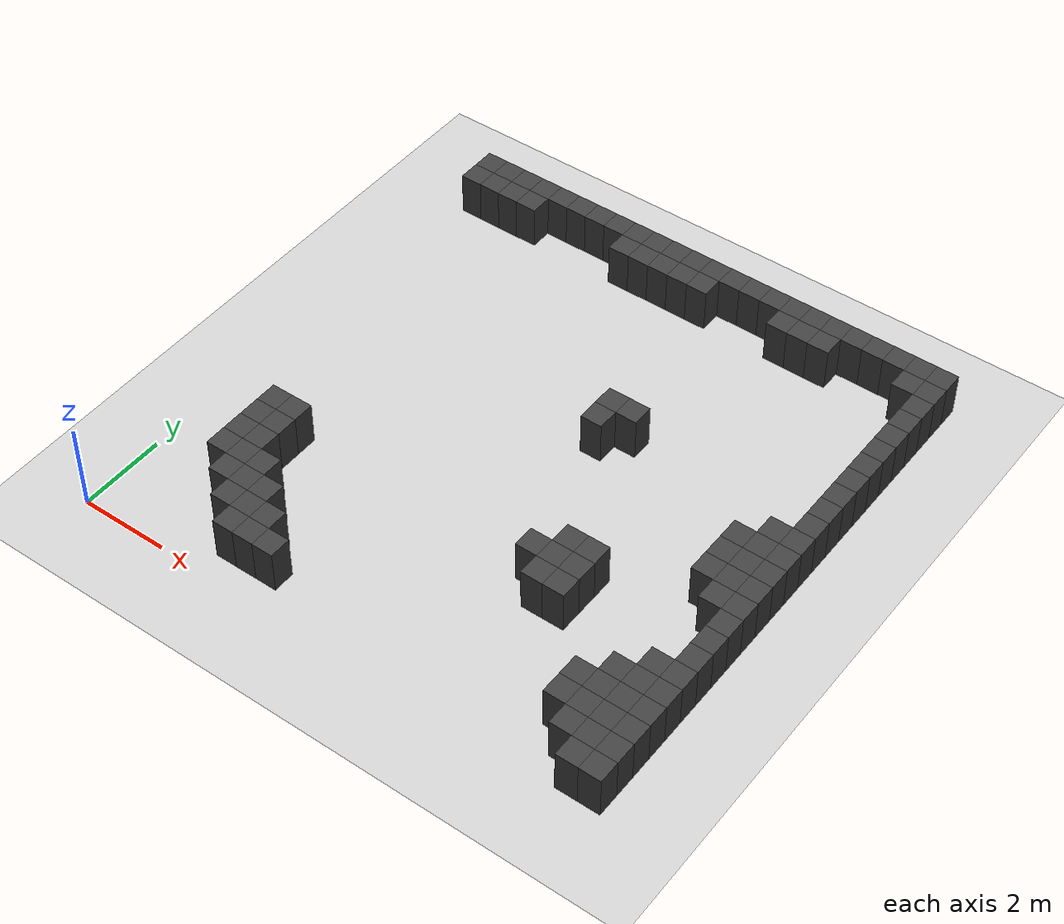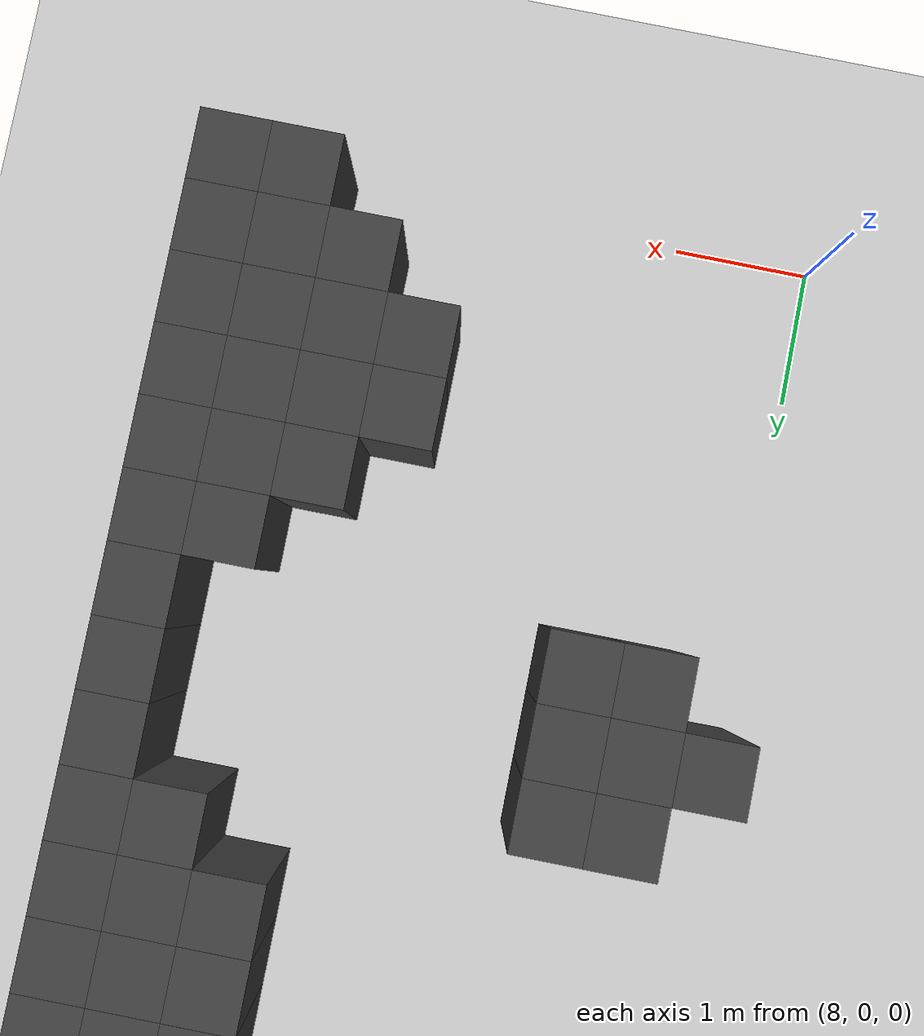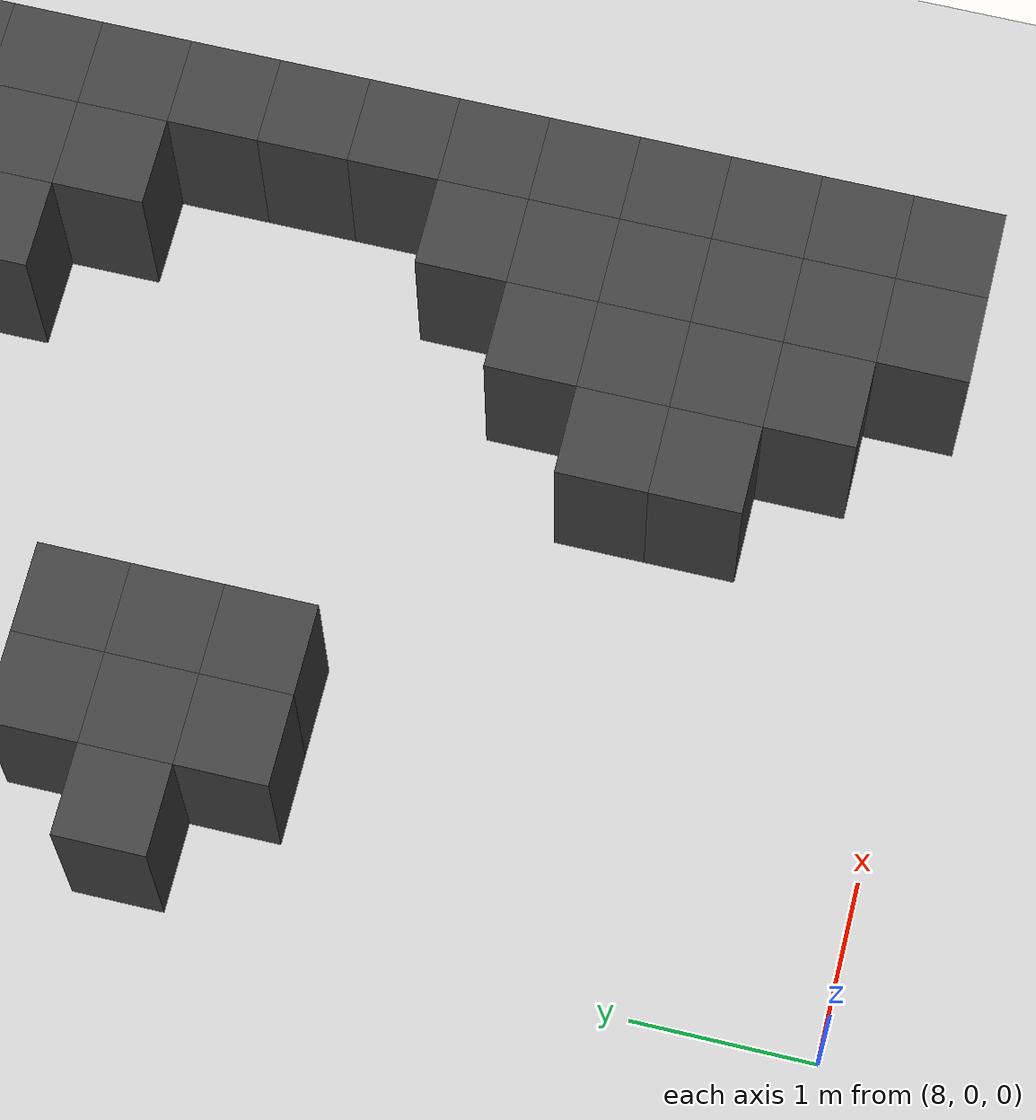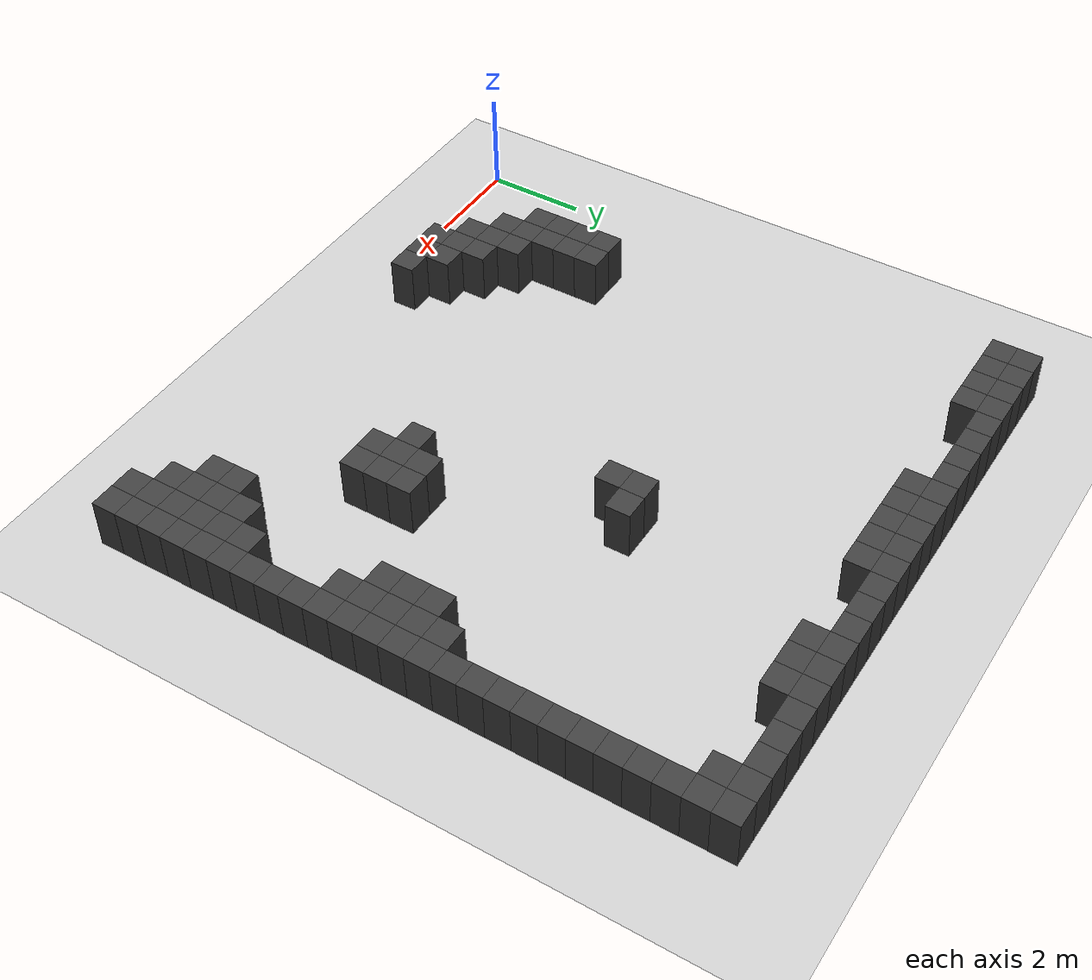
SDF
<sdf version="1.7">
 <world name="map_5937">
  <model name="ground_plane">
   <static>true</static>
   <link name="link">
    <collision name="collision">
     <geometry><plane><normal>0 0 1</normal><size>200 200</size></plane></geometry>
    </collision>
    <visual name="visual">
     <geometry><plane><normal>0 0 1</normal><size>200 200</size></plane></geometry>
     <material><ambient>0.8 0.8 0.8 1</ambient><diffuse>0.8 0.8 0.8 1</diffuse></material>
    </visual>
   </link>
  </model>
  <model name="maze_environment">
   <static>true</static>
   <link name="wall_26">
    <pose>0.750 12.250 0.500 0 0 0</pose>
    <collision name="col"><geometry><box><size>0.5 0.5 1.0</size></box></geometry></collision>
    <visual name="vis">
     <geometry><box><size>0.5 0.5 1.0</size></box></geometry>
     <material><ambient>0.15 0.15 0.15 1</ambient><diffuse>0.25 0.25 0.25 1</diffuse></material>
    </visual>
   </link>
   <link name="wall_27">
    <pose>1.250 12.250 0.500 0 0 0</pose>
    <collision name="col"><geometry><box><size>0.5 0.5 1.0</size></box></geometry></collision>
    <visual name="vis">
     <geometry><box><size>0.5 0.5 1.0</size></box></geometry>
     <material><ambient>0.15 0.15 0.15 1</ambient><diffuse>0.25 0.25 0.25 1</diffuse></material>
    </visual>
   </link>
   <link name="wall_28">
    <pose>1.750 12.250 0.500 0 0 0</pose>
    <collision name="col"><geometry><box><size>0.5 0.5 1.0</size></box></geometry></collision>
    <visual name="vis">
     <geometry><box><size>0.5 0.5 1.0</size></box></geometry>
     <material><ambient>0.15 0.15 0.15 1</ambient><diffuse>0.25 0.25 0.25 1</diffuse></material>
    </visual>
   </link>
   <link name="wall_29">
    <pose>2.250 12.250 0.500 0 0 0</pose>
    <collision name="col"><geometry><box><size>0.5 0.5 1.0</size></box></geometry></collision>
    <visual name="vis">
     <geometry><box><size>0.5 0.5 1.0</size></box></geometry>
     <material><ambient>0.15 0.15 0.15 1</ambient><diffuse>0.25 0.25 0.25 1</diffuse></material>
    </visual>
   </link>
   <link name="wall_30">
    <pose>2.750 12.250 0.500 0 0 0</pose>
    <collision name="col"><geometry><box><size>0.5 0.5 1.0</size></box></geometry></collision>
    <visual name="vis">
     <geometry><box><size>0.5 0.5 1.0</size></box></geometry>
     <material><ambient>0.15 0.15 0.15 1</ambient><diffuse>0.25 0.25 0.25 1</diffuse></material>
    </visual>
   </link>
   <link name="wall_31">
    <pose>3.250 12.250 0.500 0 0 0</pose>
    <collision name="col"><geometry><box><size>0.5 0.5 1.0</size></box></geometry></collision>
    <visual name="vis">
     <geometry><box><size>0.5 0.5 1.0</size></box></geometry>
     <material><ambient>0.15 0.15 0.15 1</ambient><diffuse>0.25 0.25 0.25 1</diffuse></material>
    </visual>
   </link>
   <link name="wall_32">
    <pose>3.750 12.250 0.500 0 0 0</pose>
    <collision name="col"><geometry><box><size>0.5 0.5 1.0</size></box></geometry></collision>
    <visual name="vis">
     <geometry><box><size>0.5 0.5 1.0</size></box></geometry>
     <material><ambient>0.15 0.15 0.15 1</ambient><diffuse>0.25 0.25 0.25 1</diffuse></material>
    </visual>
   </link>
   <link name="wall_33">
    <pose>4.250 12.250 0.500 0 0 0</pose>
    <collision name="col"><geometry><box><size>0.5 0.5 1.0</size></box></geometry></collision>
    <visual name="vis">
     <geometry><box><size>0.5 0.5 1.0</size></box></geometry>
     <material><ambient>0.15 0.15 0.15 1</ambient><diffuse>0.25 0.25 0.25 1</diffuse></material>
    </visual>
   </link>
   <link name="wall_34">
    <pose>4.750 12.250 0.500 0 0 0</pose>
    <collision name="col"><geometry><box><size>0.5 0.5 1.0</size></box></geometry></collision>
    <visual name="vis">
     <geometry><box><size>0.5 0.5 1.0</size></box></geometry>
     <material><ambient>0.15 0.15 0.15 1</ambient><diffuse>0.25 0.25 0.25 1</diffuse></material>
    </visual>
   </link>
   <link name="wall_35">
    <pose>5.250 12.250 0.500 0 0 0</pose>
    <collision name="col"><geometry><box><size>0.5 0.5 1.0</size></box></geometry></collision>
    <visual name="vis">
     <geometry><box><size>0.5 0.5 1.0</size></box></geometry>
     <material><ambient>0.15 0.15 0.15 1</ambient><diffuse>0.25 0.25 0.25 1</diffuse></material>
    </visual>
   </link>
   <link name="wall_36">
    <pose>5.750 12.250 0.500 0 0 0</pose>
    <collision name="col"><geometry><box><size>0.5 0.5 1.0</size></box></geometry></collision>
    <visual name="vis">
     <geometry><box><size>0.5 0.5 1.0</size></box></geometry>
     <material><ambient>0.15 0.15 0.15 1</ambient><diffuse>0.25 0.25 0.25 1</diffuse></material>
    </visual>
   </link>
   <link name="wall_37">
    <pose>6.250 12.250 0.500 0 0 0</pose>
    <collision name="col"><geometry><box><size>0.5 0.5 1.0</size></box></geometry></collision>
    <visual name="vis">
     <geometry><box><size>0.5 0.5 1.0</size></box></geometry>
     <material><ambient>0.15 0.15 0.15 1</ambient><diffuse>0.25 0.25 0.25 1</diffuse></material>
    </visual>
   </link>
   <link name="wall_38">
    <pose>6.750 12.250 0.500 0 0 0</pose>
    <collision name="col"><geometry><box><size>0.5 0.5 1.0</size></box></geometry></collision>
    <visual name="vis">
     <geometry><box><size>0.5 0.5 1.0</size></box></geometry>
     <material><ambient>0.15 0.15 0.15 1</ambient><diffuse>0.25 0.25 0.25 1</diffuse></material>
    </visual>
   </link>
   <link name="wall_39">
    <pose>7.250 12.250 0.500 0 0 0</pose>
    <collision name="col"><geometry><box><size>0.5 0.5 1.0</size></box></geometry></collision>
    <visual name="vis">
     <geometry><box><size>0.5 0.5 1.0</size></box></geometry>
     <material><ambient>0.15 0.15 0.15 1</ambient><diffuse>0.25 0.25 0.25 1</diffuse></material>
    </visual>
   </link>
   <link name="wall_40">
    <pose>7.750 12.250 0.500 0 0 0</pose>
    <collision name="col"><geometry><box><size>0.5 0.5 1.0</size></box></geometry></collision>
    <visual name="vis">
     <geometry><box><size>0.5 0.5 1.0</size></box></geometry>
     <material><ambient>0.15 0.15 0.15 1</ambient><diffuse>0.25 0.25 0.25 1</diffuse></material>
    </visual>
   </link>
   <link name="wall_41">
    <pose>8.250 12.250 0.500 0 0 0</pose>
    <collision name="col"><geometry><box><size>0.5 0.5 1.0</size></box></geometry></collision>
    <visual name="vis">
     <geometry><box><size>0.5 0.5 1.0</size></box></geometry>
     <material><ambient>0.15 0.15 0.15 1</ambient><diffuse>0.25 0.25 0.25 1</diffuse></material>
    </visual>
   </link>
   <link name="wall_42">
    <pose>8.750 12.250 0.500 0 0 0</pose>
    <collision name="col"><geometry><box><size>0.5 0.5 1.0</size></box></geometry></collision>
    <visual name="vis">
     <geometry><box><size>0.5 0.5 1.0</size></box></geometry>
     <material><ambient>0.15 0.15 0.15 1</ambient><diffuse>0.25 0.25 0.25 1</diffuse></material>
    </visual>
   </link>
   <link name="wall_43">
    <pose>9.250 12.250 0.500 0 0 0</pose>
    <collision name="col"><geometry><box><size>0.5 0.5 1.0</size></box></geometry></collision>
    <visual name="vis">
     <geometry><box><size>0.5 0.5 1.0</size></box></geometry>
     <material><ambient>0.15 0.15 0.15 1</ambient><diffuse>0.25 0.25 0.25 1</diffuse></material>
    </visual>
   </link>
   <link name="wall_44">
    <pose>9.750 12.250 0.500 0 0 0</pose>
    <collision name="col"><geometry><box><size>0.5 0.5 1.0</size></box></geometry></collision>
    <visual name="vis">
     <geometry><box><size>0.5 0.5 1.0</size></box></geometry>
     <material><ambient>0.15 0.15 0.15 1</ambient><diffuse>0.25 0.25 0.25 1</diffuse></material>
    </visual>
   </link>
   <link name="wall_45">
    <pose>10.250 12.250 0.500 0 0 0</pose>
    <collision name="col"><geometry><box><size>0.5 0.5 1.0</size></box></geometry></collision>
    <visual name="vis">
     <geometry><box><size>0.5 0.5 1.0</size></box></geometry>
     <material><ambient>0.15 0.15 0.15 1</ambient><diffuse>0.25 0.25 0.25 1</diffuse></material>
    </visual>
   </link>
   <link name="wall_46">
    <pose>10.750 12.250 0.500 0 0 0</pose>
    <collision name="col"><geometry><box><size>0.5 0.5 1.0</size></box></geometry></collision>
    <visual name="vis">
     <geometry><box><size>0.5 0.5 1.0</size></box></geometry>
     <material><ambient>0.15 0.15 0.15 1</ambient><diffuse>0.25 0.25 0.25 1</diffuse></material>
    </visual>
   </link>
   <link name="wall_47">
    <pose>11.250 12.250 0.500 0 0 0</pose>
    <collision name="col"><geometry><box><size>0.5 0.5 1.0</size></box></geometry></collision>
    <visual name="vis">
     <geometry><box><size>0.5 0.5 1.0</size></box></geometry>
     <material><ambient>0.15 0.15 0.15 1</ambient><diffuse>0.25 0.25 0.25 1</diffuse></material>
    </visual>
   </link>
   <link name="wall_48">
    <pose>11.750 12.250 0.500 0 0 0</pose>
    <collision name="col"><geometry><box><size>0.5 0.5 1.0</size></box></geometry></collision>
    <visual name="vis">
     <geometry><box><size>0.5 0.5 1.0</size></box></geometry>
     <material><ambient>0.15 0.15 0.15 1</ambient><diffuse>0.25 0.25 0.25 1</diffuse></material>
    </visual>
   </link>
   <link name="wall_49">
    <pose>12.250 12.250 0.500 0 0 0</pose>
    <collision name="col"><geometry><box><size>0.5 0.5 1.0</size></box></geometry></collision>
    <visual name="vis">
     <geometry><box><size>0.5 0.5 1.0</size></box></geometry>
     <material><ambient>0.15 0.15 0.15 1</ambient><diffuse>0.25 0.25 0.25 1</diffuse></material>
    </visual>
   </link>
   <link name="wall_59">
    <pose>0.750 11.750 0.500 0 0 0</pose>
    <collision name="col"><geometry><box><size>0.5 0.5 1.0</size></box></geometry></collision>
    <visual name="vis">
     <geometry><box><size>0.5 0.5 1.0</size></box></geometry>
     <material><ambient>0.15 0.15 0.15 1</ambient><diffuse>0.25 0.25 0.25 1</diffuse></material>
    </visual>
   </link>
   <link name="wall_60">
    <pose>1.250 11.750 0.500 0 0 0</pose>
    <collision name="col"><geometry><box><size>0.5 0.5 1.0</size></box></geometry></collision>
    <visual name="vis">
     <geometry><box><size>0.5 0.5 1.0</size></box></geometry>
     <material><ambient>0.15 0.15 0.15 1</ambient><diffuse>0.25 0.25 0.25 1</diffuse></material>
    </visual>
   </link>
   <link name="wall_61">
    <pose>1.750 11.750 0.500 0 0 0</pose>
    <collision name="col"><geometry><box><size>0.5 0.5 1.0</size></box></geometry></collision>
    <visual name="vis">
     <geometry><box><size>0.5 0.5 1.0</size></box></geometry>
     <material><ambient>0.15 0.15 0.15 1</ambient><diffuse>0.25 0.25 0.25 1</diffuse></material>
    </visual>
   </link>
   <link name="wall_62">
    <pose>2.250 11.750 0.500 0 0 0</pose>
    <collision name="col"><geometry><box><size>0.5 0.5 1.0</size></box></geometry></collision>
    <visual name="vis">
     <geometry><box><size>0.5 0.5 1.0</size></box></geometry>
     <material><ambient>0.15 0.15 0.15 1</ambient><diffuse>0.25 0.25 0.25 1</diffuse></material>
    </visual>
   </link>
   <link name="wall_63">
    <pose>4.750 11.750 0.500 0 0 0</pose>
    <collision name="col"><geometry><box><size>0.5 0.5 1.0</size></box></geometry></collision>
    <visual name="vis">
     <geometry><box><size>0.5 0.5 1.0</size></box></geometry>
     <material><ambient>0.15 0.15 0.15 1</ambient><diffuse>0.25 0.25 0.25 1</diffuse></material>
    </visual>
   </link>
   <link name="wall_64">
    <pose>5.250 11.750 0.500 0 0 0</pose>
    <collision name="col"><geometry><box><size>0.5 0.5 1.0</size></box></geometry></collision>
    <visual name="vis">
     <geometry><box><size>0.5 0.5 1.0</size></box></geometry>
     <material><ambient>0.15 0.15 0.15 1</ambient><diffuse>0.25 0.25 0.25 1</diffuse></material>
    </visual>
   </link>
   <link name="wall_65">
    <pose>5.750 11.750 0.500 0 0 0</pose>
    <collision name="col"><geometry><box><size>0.5 0.5 1.0</size></box></geometry></collision>
    <visual name="vis">
     <geometry><box><size>0.5 0.5 1.0</size></box></geometry>
     <material><ambient>0.15 0.15 0.15 1</ambient><diffuse>0.25 0.25 0.25 1</diffuse></material>
    </visual>
   </link>
   <link name="wall_66">
    <pose>6.250 11.750 0.500 0 0 0</pose>
    <collision name="col"><geometry><box><size>0.5 0.5 1.0</size></box></geometry></collision>
    <visual name="vis">
     <geometry><box><size>0.5 0.5 1.0</size></box></geometry>
     <material><ambient>0.15 0.15 0.15 1</ambient><diffuse>0.25 0.25 0.25 1</diffuse></material>
    </visual>
   </link>
   <link name="wall_67">
    <pose>6.750 11.750 0.500 0 0 0</pose>
    <collision name="col"><geometry><box><size>0.5 0.5 1.0</size></box></geometry></collision>
    <visual name="vis">
     <geometry><box><size>0.5 0.5 1.0</size></box></geometry>
     <material><ambient>0.15 0.15 0.15 1</ambient><diffuse>0.25 0.25 0.25 1</diffuse></material>
    </visual>
   </link>
   <link name="wall_68">
    <pose>8.750 11.750 0.500 0 0 0</pose>
    <collision name="col"><geometry><box><size>0.5 0.5 1.0</size></box></geometry></collision>
    <visual name="vis">
     <geometry><box><size>0.5 0.5 1.0</size></box></geometry>
     <material><ambient>0.15 0.15 0.15 1</ambient><diffuse>0.25 0.25 0.25 1</diffuse></material>
    </visual>
   </link>
   <link name="wall_69">
    <pose>9.250 11.750 0.500 0 0 0</pose>
    <collision name="col"><geometry><box><size>0.5 0.5 1.0</size></box></geometry></collision>
    <visual name="vis">
     <geometry><box><size>0.5 0.5 1.0</size></box></geometry>
     <material><ambient>0.15 0.15 0.15 1</ambient><diffuse>0.25 0.25 0.25 1</diffuse></material>
    </visual>
   </link>
   <link name="wall_70">
    <pose>9.750 11.750 0.500 0 0 0</pose>
    <collision name="col"><geometry><box><size>0.5 0.5 1.0</size></box></geometry></collision>
    <visual name="vis">
     <geometry><box><size>0.5 0.5 1.0</size></box></geometry>
     <material><ambient>0.15 0.15 0.15 1</ambient><diffuse>0.25 0.25 0.25 1</diffuse></material>
    </visual>
   </link>
   <link name="wall_71">
    <pose>11.750 11.750 0.500 0 0 0</pose>
    <collision name="col"><geometry><box><size>0.5 0.5 1.0</size></box></geometry></collision>
    <visual name="vis">
     <geometry><box><size>0.5 0.5 1.0</size></box></geometry>
     <material><ambient>0.15 0.15 0.15 1</ambient><diffuse>0.25 0.25 0.25 1</diffuse></material>
    </visual>
   </link>
   <link name="wall_72">
    <pose>12.250 11.750 0.500 0 0 0</pose>
    <collision name="col"><geometry><box><size>0.5 0.5 1.0</size></box></geometry></collision>
    <visual name="vis">
     <geometry><box><size>0.5 0.5 1.0</size></box></geometry>
     <material><ambient>0.15 0.15 0.15 1</ambient><diffuse>0.25 0.25 0.25 1</diffuse></material>
    </visual>
   </link>
   <link name="wall_79">
    <pose>12.250 11.250 0.500 0 0 0</pose>
    <collision name="col"><geometry><box><size>0.5 0.5 1.0</size></box></geometry></collision>
    <visual name="vis">
     <geometry><box><size>0.5 0.5 1.0</size></box></geometry>
     <material><ambient>0.15 0.15 0.15 1</ambient><diffuse>0.25 0.25 0.25 1</diffuse></material>
    </visual>
   </link>
   <link name="wall_85">
    <pose>12.250 10.750 0.500 0 0 0</pose>
    <collision name="col"><geometry><box><size>0.5 0.5 1.0</size></box></geometry></collision>
    <visual name="vis">
     <geometry><box><size>0.5 0.5 1.0</size></box></geometry>
     <material><ambient>0.15 0.15 0.15 1</ambient><diffuse>0.25 0.25 0.25 1</diffuse></material>
    </visual>
   </link>
   <link name="wall_91">
    <pose>12.250 10.250 0.500 0 0 0</pose>
    <collision name="col"><geometry><box><size>0.5 0.5 1.0</size></box></geometry></collision>
    <visual name="vis">
     <geometry><box><size>0.5 0.5 1.0</size></box></geometry>
     <material><ambient>0.15 0.15 0.15 1</ambient><diffuse>0.25 0.25 0.25 1</diffuse></material>
    </visual>
   </link>
   <link name="wall_97">
    <pose>12.250 9.750 0.500 0 0 0</pose>
    <collision name="col"><geometry><box><size>0.5 0.5 1.0</size></box></geometry></collision>
    <visual name="vis">
     <geometry><box><size>0.5 0.5 1.0</size></box></geometry>
     <material><ambient>0.15 0.15 0.15 1</ambient><diffuse>0.25 0.25 0.25 1</diffuse></material>
    </visual>
   </link>
   <link name="wall_102">
    <pose>12.250 9.250 0.500 0 0 0</pose>
    <collision name="col"><geometry><box><size>0.5 0.5 1.0</size></box></geometry></collision>
    <visual name="vis">
     <geometry><box><size>0.5 0.5 1.0</size></box></geometry>
     <material><ambient>0.15 0.15 0.15 1</ambient><diffuse>0.25 0.25 0.25 1</diffuse></material>
    </visual>
   </link>
   <link name="wall_109">
    <pose>12.250 8.750 0.500 0 0 0</pose>
    <collision name="col"><geometry><box><size>0.5 0.5 1.0</size></box></geometry></collision>
    <visual name="vis">
     <geometry><box><size>0.5 0.5 1.0</size></box></geometry>
     <material><ambient>0.15 0.15 0.15 1</ambient><diffuse>0.25 0.25 0.25 1</diffuse></material>
    </visual>
   </link>
   <link name="wall_115">
    <pose>12.250 8.250 0.500 0 0 0</pose>
    <collision name="col"><geometry><box><size>0.5 0.5 1.0</size></box></geometry></collision>
    <visual name="vis">
     <geometry><box><size>0.5 0.5 1.0</size></box></geometry>
     <material><ambient>0.15 0.15 0.15 1</ambient><diffuse>0.25 0.25 0.25 1</diffuse></material>
    </visual>
   </link>
   <link name="wall_119">
    <pose>7.250 7.750 0.500 0 0 0</pose>
    <collision name="col"><geometry><box><size>0.5 0.5 1.0</size></box></geometry></collision>
    <visual name="vis">
     <geometry><box><size>0.5 0.5 1.0</size></box></geometry>
     <material><ambient>0.15 0.15 0.15 1</ambient><diffuse>0.25 0.25 0.25 1</diffuse></material>
    </visual>
   </link>
   <link name="wall_120">
    <pose>7.750 7.750 0.500 0 0 0</pose>
    <collision name="col"><geometry><box><size>0.5 0.5 1.0</size></box></geometry></collision>
    <visual name="vis">
     <geometry><box><size>0.5 0.5 1.0</size></box></geometry>
     <material><ambient>0.15 0.15 0.15 1</ambient><diffuse>0.25 0.25 0.25 1</diffuse></material>
    </visual>
   </link>
   <link name="wall_121">
    <pose>12.250 7.750 0.500 0 0 0</pose>
    <collision name="col"><geometry><box><size>0.5 0.5 1.0</size></box></geometry></collision>
    <visual name="vis">
     <geometry><box><size>0.5 0.5 1.0</size></box></geometry>
     <material><ambient>0.15 0.15 0.15 1</ambient><diffuse>0.25 0.25 0.25 1</diffuse></material>
    </visual>
   </link>
   <link name="wall_123">
    <pose>7.250 7.250 0.500 0 0 0</pose>
    <collision name="col"><geometry><box><size>0.5 0.5 1.0</size></box></geometry></collision>
    <visual name="vis">
     <geometry><box><size>0.5 0.5 1.0</size></box></geometry>
     <material><ambient>0.15 0.15 0.15 1</ambient><diffuse>0.25 0.25 0.25 1</diffuse></material>
    </visual>
   </link>
   <link name="wall_124">
    <pose>12.250 7.250 0.500 0 0 0</pose>
    <collision name="col"><geometry><box><size>0.5 0.5 1.0</size></box></geometry></collision>
    <visual name="vis">
     <geometry><box><size>0.5 0.5 1.0</size></box></geometry>
     <material><ambient>0.15 0.15 0.15 1</ambient><diffuse>0.25 0.25 0.25 1</diffuse></material>
    </visual>
   </link>
   <link name="wall_127">
    <pose>11.750 6.750 0.500 0 0 0</pose>
    <collision name="col"><geometry><box><size>0.5 0.5 1.0</size></box></geometry></collision>
    <visual name="vis">
     <geometry><box><size>0.5 0.5 1.0</size></box></geometry>
     <material><ambient>0.15 0.15 0.15 1</ambient><diffuse>0.25 0.25 0.25 1</diffuse></material>
    </visual>
   </link>
   <link name="wall_128">
    <pose>12.250 6.750 0.500 0 0 0</pose>
    <collision name="col"><geometry><box><size>0.5 0.5 1.0</size></box></geometry></collision>
    <visual name="vis">
     <geometry><box><size>0.5 0.5 1.0</size></box></geometry>
     <material><ambient>0.15 0.15 0.15 1</ambient><diffuse>0.25 0.25 0.25 1</diffuse></material>
    </visual>
   </link>
   <link name="wall_133">
    <pose>11.250 6.250 0.500 0 0 0</pose>
    <collision name="col"><geometry><box><size>0.5 0.5 1.0</size></box></geometry></collision>
    <visual name="vis">
     <geometry><box><size>0.5 0.5 1.0</size></box></geometry>
     <material><ambient>0.15 0.15 0.15 1</ambient><diffuse>0.25 0.25 0.25 1</diffuse></material>
    </visual>
   </link>
   <link name="wall_134">
    <pose>11.750 6.250 0.500 0 0 0</pose>
    <collision name="col"><geometry><box><size>0.5 0.5 1.0</size></box></geometry></collision>
    <visual name="vis">
     <geometry><box><size>0.5 0.5 1.0</size></box></geometry>
     <material><ambient>0.15 0.15 0.15 1</ambient><diffuse>0.25 0.25 0.25 1</diffuse></material>
    </visual>
   </link>
   <link name="wall_135">
    <pose>12.250 6.250 0.500 0 0 0</pose>
    <collision name="col"><geometry><box><size>0.5 0.5 1.0</size></box></geometry></collision>
    <visual name="vis">
     <geometry><box><size>0.5 0.5 1.0</size></box></geometry>
     <material><ambient>0.15 0.15 0.15 1</ambient><diffuse>0.25 0.25 0.25 1</diffuse></material>
    </visual>
   </link>
   <link name="wall_140">
    <pose>11.250 5.750 0.500 0 0 0</pose>
    <collision name="col"><geometry><box><size>0.5 0.5 1.0</size></box></geometry></collision>
    <visual name="vis">
     <geometry><box><size>0.5 0.5 1.0</size></box></geometry>
     <material><ambient>0.15 0.15 0.15 1</ambient><diffuse>0.25 0.25 0.25 1</diffuse></material>
    </visual>
   </link>
   <link name="wall_141">
    <pose>11.750 5.750 0.500 0 0 0</pose>
    <collision name="col"><geometry><box><size>0.5 0.5 1.0</size></box></geometry></collision>
    <visual name="vis">
     <geometry><box><size>0.5 0.5 1.0</size></box></geometry>
     <material><ambient>0.15 0.15 0.15 1</ambient><diffuse>0.25 0.25 0.25 1</diffuse></material>
    </visual>
   </link>
   <link name="wall_142">
    <pose>12.250 5.750 0.500 0 0 0</pose>
    <collision name="col"><geometry><box><size>0.5 0.5 1.0</size></box></geometry></collision>
    <visual name="vis">
     <geometry><box><size>0.5 0.5 1.0</size></box></geometry>
     <material><ambient>0.15 0.15 0.15 1</ambient><diffuse>0.25 0.25 0.25 1</diffuse></material>
    </visual>
   </link>
   <link name="wall_147">
    <pose>11.250 5.250 0.500 0 0 0</pose>
    <collision name="col"><geometry><box><size>0.5 0.5 1.0</size></box></geometry></collision>
    <visual name="vis">
     <geometry><box><size>0.5 0.5 1.0</size></box></geometry>
     <material><ambient>0.15 0.15 0.15 1</ambient><diffuse>0.25 0.25 0.25 1</diffuse></material>
    </visual>
   </link>
   <link name="wall_148">
    <pose>11.750 5.250 0.500 0 0 0</pose>
    <collision name="col"><geometry><box><size>0.5 0.5 1.0</size></box></geometry></collision>
    <visual name="vis">
     <geometry><box><size>0.5 0.5 1.0</size></box></geometry>
     <material><ambient>0.15 0.15 0.15 1</ambient><diffuse>0.25 0.25 0.25 1</diffuse></material>
    </visual>
   </link>
   <link name="wall_149">
    <pose>12.250 5.250 0.500 0 0 0</pose>
    <collision name="col"><geometry><box><size>0.5 0.5 1.0</size></box></geometry></collision>
    <visual name="vis">
     <geometry><box><size>0.5 0.5 1.0</size></box></geometry>
     <material><ambient>0.15 0.15 0.15 1</ambient><diffuse>0.25 0.25 0.25 1</diffuse></material>
    </visual>
   </link>
   <link name="wall_154">
    <pose>11.750 4.750 0.500 0 0 0</pose>
    <collision name="col"><geometry><box><size>0.5 0.5 1.0</size></box></geometry></collision>
    <visual name="vis">
     <geometry><box><size>0.5 0.5 1.0</size></box></geometry>
     <material><ambient>0.15 0.15 0.15 1</ambient><diffuse>0.25 0.25 0.25 1</diffuse></material>
    </visual>
   </link>
   <link name="wall_155">
    <pose>12.250 4.750 0.500 0 0 0</pose>
    <collision name="col"><geometry><box><size>0.5 0.5 1.0</size></box></geometry></collision>
    <visual name="vis">
     <geometry><box><size>0.5 0.5 1.0</size></box></geometry>
     <material><ambient>0.15 0.15 0.15 1</ambient><diffuse>0.25 0.25 0.25 1</diffuse></material>
    </visual>
   </link>
   <link name="wall_160">
    <pose>8.750 4.250 0.500 0 0 0</pose>
    <collision name="col"><geometry><box><size>0.5 0.5 1.0</size></box></geometry></collision>
    <visual name="vis">
     <geometry><box><size>0.5 0.5 1.0</size></box></geometry>
     <material><ambient>0.15 0.15 0.15 1</ambient><diffuse>0.25 0.25 0.25 1</diffuse></material>
    </visual>
   </link>
   <link name="wall_161">
    <pose>9.250 4.250 0.500 0 0 0</pose>
    <collision name="col"><geometry><box><size>0.5 0.5 1.0</size></box></geometry></collision>
    <visual name="vis">
     <geometry><box><size>0.5 0.5 1.0</size></box></geometry>
     <material><ambient>0.15 0.15 0.15 1</ambient><diffuse>0.25 0.25 0.25 1</diffuse></material>
    </visual>
   </link>
   <link name="wall_162">
    <pose>12.250 4.250 0.500 0 0 0</pose>
    <collision name="col"><geometry><box><size>0.5 0.5 1.0</size></box></geometry></collision>
    <visual name="vis">
     <geometry><box><size>0.5 0.5 1.0</size></box></geometry>
     <material><ambient>0.15 0.15 0.15 1</ambient><diffuse>0.25 0.25 0.25 1</diffuse></material>
    </visual>
   </link>
   <link name="wall_168">
    <pose>1.750 3.750 0.500 0 0 0</pose>
    <collision name="col"><geometry><box><size>0.5 0.5 1.0</size></box></geometry></collision>
    <visual name="vis">
     <geometry><box><size>0.5 0.5 1.0</size></box></geometry>
     <material><ambient>0.15 0.15 0.15 1</ambient><diffuse>0.25 0.25 0.25 1</diffuse></material>
    </visual>
   </link>
   <link name="wall_169">
    <pose>2.250 3.750 0.500 0 0 0</pose>
    <collision name="col"><geometry><box><size>0.5 0.5 1.0</size></box></geometry></collision>
    <visual name="vis">
     <geometry><box><size>0.5 0.5 1.0</size></box></geometry>
     <material><ambient>0.15 0.15 0.15 1</ambient><diffuse>0.25 0.25 0.25 1</diffuse></material>
    </visual>
   </link>
   <link name="wall_170">
    <pose>8.250 3.750 0.500 0 0 0</pose>
    <collision name="col"><geometry><box><size>0.5 0.5 1.0</size></box></geometry></collision>
    <visual name="vis">
     <geometry><box><size>0.5 0.5 1.0</size></box></geometry>
     <material><ambient>0.15 0.15 0.15 1</ambient><diffuse>0.25 0.25 0.25 1</diffuse></material>
    </visual>
   </link>
   <link name="wall_171">
    <pose>8.750 3.750 0.500 0 0 0</pose>
    <collision name="col"><geometry><box><size>0.5 0.5 1.0</size></box></geometry></collision>
    <visual name="vis">
     <geometry><box><size>0.5 0.5 1.0</size></box></geometry>
     <material><ambient>0.15 0.15 0.15 1</ambient><diffuse>0.25 0.25 0.25 1</diffuse></material>
    </visual>
   </link>
   <link name="wall_172">
    <pose>9.250 3.750 0.500 0 0 0</pose>
    <collision name="col"><geometry><box><size>0.5 0.5 1.0</size></box></geometry></collision>
    <visual name="vis">
     <geometry><box><size>0.5 0.5 1.0</size></box></geometry>
     <material><ambient>0.15 0.15 0.15 1</ambient><diffuse>0.25 0.25 0.25 1</diffuse></material>
    </visual>
   </link>
   <link name="wall_173">
    <pose>12.250 3.750 0.500 0 0 0</pose>
    <collision name="col"><geometry><box><size>0.5 0.5 1.0</size></box></geometry></collision>
    <visual name="vis">
     <geometry><box><size>0.5 0.5 1.0</size></box></geometry>
     <material><ambient>0.15 0.15 0.15 1</ambient><diffuse>0.25 0.25 0.25 1</diffuse></material>
    </visual>
   </link>
   <link name="wall_178">
    <pose>1.750 3.250 0.500 0 0 0</pose>
    <collision name="col"><geometry><box><size>0.5 0.5 1.0</size></box></geometry></collision>
    <visual name="vis">
     <geometry><box><size>0.5 0.5 1.0</size></box></geometry>
     <material><ambient>0.15 0.15 0.15 1</ambient><diffuse>0.25 0.25 0.25 1</diffuse></material>
    </visual>
   </link>
   <link name="wall_179">
    <pose>2.250 3.250 0.500 0 0 0</pose>
    <collision name="col"><geometry><box><size>0.5 0.5 1.0</size></box></geometry></collision>
    <visual name="vis">
     <geometry><box><size>0.5 0.5 1.0</size></box></geometry>
     <material><ambient>0.15 0.15 0.15 1</ambient><diffuse>0.25 0.25 0.25 1</diffuse></material>
    </visual>
   </link>
   <link name="wall_180">
    <pose>8.750 3.250 0.500 0 0 0</pose>
    <collision name="col"><geometry><box><size>0.5 0.5 1.0</size></box></geometry></collision>
    <visual name="vis">
     <geometry><box><size>0.5 0.5 1.0</size></box></geometry>
     <material><ambient>0.15 0.15 0.15 1</ambient><diffuse>0.25 0.25 0.25 1</diffuse></material>
    </visual>
   </link>
   <link name="wall_181">
    <pose>9.250 3.250 0.500 0 0 0</pose>
    <collision name="col"><geometry><box><size>0.5 0.5 1.0</size></box></geometry></collision>
    <visual name="vis">
     <geometry><box><size>0.5 0.5 1.0</size></box></geometry>
     <material><ambient>0.15 0.15 0.15 1</ambient><diffuse>0.25 0.25 0.25 1</diffuse></material>
    </visual>
   </link>
   <link name="wall_182">
    <pose>12.250 3.250 0.500 0 0 0</pose>
    <collision name="col"><geometry><box><size>0.5 0.5 1.0</size></box></geometry></collision>
    <visual name="vis">
     <geometry><box><size>0.5 0.5 1.0</size></box></geometry>
     <material><ambient>0.15 0.15 0.15 1</ambient><diffuse>0.25 0.25 0.25 1</diffuse></material>
    </visual>
   </link>
   <link name="wall_184">
    <pose>1.750 2.750 0.500 0 0 0</pose>
    <collision name="col"><geometry><box><size>0.5 0.5 1.0</size></box></geometry></collision>
    <visual name="vis">
     <geometry><box><size>0.5 0.5 1.0</size></box></geometry>
     <material><ambient>0.15 0.15 0.15 1</ambient><diffuse>0.25 0.25 0.25 1</diffuse></material>
    </visual>
   </link>
   <link name="wall_185">
    <pose>2.250 2.750 0.500 0 0 0</pose>
    <collision name="col"><geometry><box><size>0.5 0.5 1.0</size></box></geometry></collision>
    <visual name="vis">
     <geometry><box><size>0.5 0.5 1.0</size></box></geometry>
     <material><ambient>0.15 0.15 0.15 1</ambient><diffuse>0.25 0.25 0.25 1</diffuse></material>
    </visual>
   </link>
   <link name="wall_186">
    <pose>11.750 2.750 0.500 0 0 0</pose>
    <collision name="col"><geometry><box><size>0.5 0.5 1.0</size></box></geometry></collision>
    <visual name="vis">
     <geometry><box><size>0.5 0.5 1.0</size></box></geometry>
     <material><ambient>0.15 0.15 0.15 1</ambient><diffuse>0.25 0.25 0.25 1</diffuse></material>
    </visual>
   </link>
   <link name="wall_187">
    <pose>12.250 2.750 0.500 0 0 0</pose>
    <collision name="col"><geometry><box><size>0.5 0.5 1.0</size></box></geometry></collision>
    <visual name="vis">
     <geometry><box><size>0.5 0.5 1.0</size></box></geometry>
     <material><ambient>0.15 0.15 0.15 1</ambient><diffuse>0.25 0.25 0.25 1</diffuse></material>
    </visual>
   </link>
   <link name="wall_189">
    <pose>1.750 2.250 0.500 0 0 0</pose>
    <collision name="col"><geometry><box><size>0.5 0.5 1.0</size></box></geometry></collision>
    <visual name="vis">
     <geometry><box><size>0.5 0.5 1.0</size></box></geometry>
     <material><ambient>0.15 0.15 0.15 1</ambient><diffuse>0.25 0.25 0.25 1</diffuse></material>
    </visual>
   </link>
   <link name="wall_190">
    <pose>2.250 2.250 0.500 0 0 0</pose>
    <collision name="col"><geometry><box><size>0.5 0.5 1.0</size></box></geometry></collision>
    <visual name="vis">
     <geometry><box><size>0.5 0.5 1.0</size></box></geometry>
     <material><ambient>0.15 0.15 0.15 1</ambient><diffuse>0.25 0.25 0.25 1</diffuse></material>
    </visual>
   </link>
   <link name="wall_191">
    <pose>2.750 2.250 0.500 0 0 0</pose>
    <collision name="col"><geometry><box><size>0.5 0.5 1.0</size></box></geometry></collision>
    <visual name="vis">
     <geometry><box><size>0.5 0.5 1.0</size></box></geometry>
     <material><ambient>0.15 0.15 0.15 1</ambient><diffuse>0.25 0.25 0.25 1</diffuse></material>
    </visual>
   </link>
   <link name="wall_192">
    <pose>11.250 2.250 0.500 0 0 0</pose>
    <collision name="col"><geometry><box><size>0.5 0.5 1.0</size></box></geometry></collision>
    <visual name="vis">
     <geometry><box><size>0.5 0.5 1.0</size></box></geometry>
     <material><ambient>0.15 0.15 0.15 1</ambient><diffuse>0.25 0.25 0.25 1</diffuse></material>
    </visual>
   </link>
   <link name="wall_193">
    <pose>11.750 2.250 0.500 0 0 0</pose>
    <collision name="col"><geometry><box><size>0.5 0.5 1.0</size></box></geometry></collision>
    <visual name="vis">
     <geometry><box><size>0.5 0.5 1.0</size></box></geometry>
     <material><ambient>0.15 0.15 0.15 1</ambient><diffuse>0.25 0.25 0.25 1</diffuse></material>
    </visual>
   </link>
   <link name="wall_194">
    <pose>12.250 2.250 0.500 0 0 0</pose>
    <collision name="col"><geometry><box><size>0.5 0.5 1.0</size></box></geometry></collision>
    <visual name="vis">
     <geometry><box><size>0.5 0.5 1.0</size></box></geometry>
     <material><ambient>0.15 0.15 0.15 1</ambient><diffuse>0.25 0.25 0.25 1</diffuse></material>
    </visual>
   </link>
   <link name="wall_196">
    <pose>2.250 1.750 0.500 0 0 0</pose>
    <collision name="col"><geometry><box><size>0.5 0.5 1.0</size></box></geometry></collision>
    <visual name="vis">
     <geometry><box><size>0.5 0.5 1.0</size></box></geometry>
     <material><ambient>0.15 0.15 0.15 1</ambient><diffuse>0.25 0.25 0.25 1</diffuse></material>
    </visual>
   </link>
   <link name="wall_197">
    <pose>2.750 1.750 0.500 0 0 0</pose>
    <collision name="col"><geometry><box><size>0.5 0.5 1.0</size></box></geometry></collision>
    <visual name="vis">
     <geometry><box><size>0.5 0.5 1.0</size></box></geometry>
     <material><ambient>0.15 0.15 0.15 1</ambient><diffuse>0.25 0.25 0.25 1</diffuse></material>
    </visual>
   </link>
   <link name="wall_198">
    <pose>3.250 1.750 0.500 0 0 0</pose>
    <collision name="col"><geometry><box><size>0.5 0.5 1.0</size></box></geometry></collision>
    <visual name="vis">
     <geometry><box><size>0.5 0.5 1.0</size></box></geometry>
     <material><ambient>0.15 0.15 0.15 1</ambient><diffuse>0.25 0.25 0.25 1</diffuse></material>
    </visual>
   </link>
   <link name="wall_199">
    <pose>10.750 1.750 0.500 0 0 0</pose>
    <collision name="col"><geometry><box><size>0.5 0.5 1.0</size></box></geometry></collision>
    <visual name="vis">
     <geometry><box><size>0.5 0.5 1.0</size></box></geometry>
     <material><ambient>0.15 0.15 0.15 1</ambient><diffuse>0.25 0.25 0.25 1</diffuse></material>
    </visual>
   </link>
   <link name="wall_200">
    <pose>11.250 1.750 0.500 0 0 0</pose>
    <collision name="col"><geometry><box><size>0.5 0.5 1.0</size></box></geometry></collision>
    <visual name="vis">
     <geometry><box><size>0.5 0.5 1.0</size></box></geometry>
     <material><ambient>0.15 0.15 0.15 1</ambient><diffuse>0.25 0.25 0.25 1</diffuse></material>
    </visual>
   </link>
   <link name="wall_201">
    <pose>11.750 1.750 0.500 0 0 0</pose>
    <collision name="col"><geometry><box><size>0.5 0.5 1.0</size></box></geometry></collision>
    <visual name="vis">
     <geometry><box><size>0.5 0.5 1.0</size></box></geometry>
     <material><ambient>0.15 0.15 0.15 1</ambient><diffuse>0.25 0.25 0.25 1</diffuse></material>
    </visual>
   </link>
   <link name="wall_202">
    <pose>12.250 1.750 0.500 0 0 0</pose>
    <collision name="col"><geometry><box><size>0.5 0.5 1.0</size></box></geometry></collision>
    <visual name="vis">
     <geometry><box><size>0.5 0.5 1.0</size></box></geometry>
     <material><ambient>0.15 0.15 0.15 1</ambient><diffuse>0.25 0.25 0.25 1</diffuse></material>
    </visual>
   </link>
   <link name="wall_204">
    <pose>2.750 1.250 0.500 0 0 0</pose>
    <collision name="col"><geometry><box><size>0.5 0.5 1.0</size></box></geometry></collision>
    <visual name="vis">
     <geometry><box><size>0.5 0.5 1.0</size></box></geometry>
     <material><ambient>0.15 0.15 0.15 1</ambient><diffuse>0.25 0.25 0.25 1</diffuse></material>
    </visual>
   </link>
   <link name="wall_205">
    <pose>3.250 1.250 0.500 0 0 0</pose>
    <collision name="col"><geometry><box><size>0.5 0.5 1.0</size></box></geometry></collision>
    <visual name="vis">
     <geometry><box><size>0.5 0.5 1.0</size></box></geometry>
     <material><ambient>0.15 0.15 0.15 1</ambient><diffuse>0.25 0.25 0.25 1</diffuse></material>
    </visual>
   </link>
   <link name="wall_206">
    <pose>3.750 1.250 0.500 0 0 0</pose>
    <collision name="col"><geometry><box><size>0.5 0.5 1.0</size></box></geometry></collision>
    <visual name="vis">
     <geometry><box><size>0.5 0.5 1.0</size></box></geometry>
     <material><ambient>0.15 0.15 0.15 1</ambient><diffuse>0.25 0.25 0.25 1</diffuse></material>
    </visual>
   </link>
   <link name="wall_207">
    <pose>10.750 1.250 0.500 0 0 0</pose>
    <collision name="col"><geometry><box><size>0.5 0.5 1.0</size></box></geometry></collision>
    <visual name="vis">
     <geometry><box><size>0.5 0.5 1.0</size></box></geometry>
     <material><ambient>0.15 0.15 0.15 1</ambient><diffuse>0.25 0.25 0.25 1</diffuse></material>
    </visual>
   </link>
   <link name="wall_208">
    <pose>11.250 1.250 0.500 0 0 0</pose>
    <collision name="col"><geometry><box><size>0.5 0.5 1.0</size></box></geometry></collision>
    <visual name="vis">
     <geometry><box><size>0.5 0.5 1.0</size></box></geometry>
     <material><ambient>0.15 0.15 0.15 1</ambient><diffuse>0.25 0.25 0.25 1</diffuse></material>
    </visual>
   </link>
   <link name="wall_209">
    <pose>11.750 1.250 0.500 0 0 0</pose>
    <collision name="col"><geometry><box><size>0.5 0.5 1.0</size></box></geometry></collision>
    <visual name="vis">
     <geometry><box><size>0.5 0.5 1.0</size></box></geometry>
     <material><ambient>0.15 0.15 0.15 1</ambient><diffuse>0.25 0.25 0.25 1</diffuse></material>
    </visual>
   </link>
   <link name="wall_210">
    <pose>12.250 1.250 0.500 0 0 0</pose>
    <collision name="col"><geometry><box><size>0.5 0.5 1.0</size></box></geometry></collision>
    <visual name="vis">
     <geometry><box><size>0.5 0.5 1.0</size></box></geometry>
     <material><ambient>0.15 0.15 0.15 1</ambient><diffuse>0.25 0.25 0.25 1</diffuse></material>
    </visual>
   </link>
   <link name="wall_212">
    <pose>3.250 0.750 0.500 0 0 0</pose>
    <collision name="col"><geometry><box><size>0.5 0.5 1.0</size></box></geometry></collision>
    <visual name="vis">
     <geometry><box><size>0.5 0.5 1.0</size></box></geometry>
     <material><ambient>0.15 0.15 0.15 1</ambient><diffuse>0.25 0.25 0.25 1</diffuse></material>
    </visual>
   </link>
   <link name="wall_213">
    <pose>3.750 0.750 0.500 0 0 0</pose>
    <collision name="col"><geometry><box><size>0.5 0.5 1.0</size></box></geometry></collision>
    <visual name="vis">
     <geometry><box><size>0.5 0.5 1.0</size></box></geometry>
     <material><ambient>0.15 0.15 0.15 1</ambient><diffuse>0.25 0.25 0.25 1</diffuse></material>
    </visual>
   </link>
   <link name="wall_214">
    <pose>4.250 0.750 0.500 0 0 0</pose>
    <collision name="col"><geometry><box><size>0.5 0.5 1.0</size></box></geometry></collision>
    <visual name="vis">
     <geometry><box><size>0.5 0.5 1.0</size></box></geometry>
     <material><ambient>0.15 0.15 0.15 1</ambient><diffuse>0.25 0.25 0.25 1</diffuse></material>
    </visual>
   </link>
   <link name="wall_215">
    <pose>11.250 0.750 0.500 0 0 0</pose>
    <collision name="col"><geometry><box><size>0.5 0.5 1.0</size></box></geometry></collision>
    <visual name="vis">
     <geometry><box><size>0.5 0.5 1.0</size></box></geometry>
     <material><ambient>0.15 0.15 0.15 1</ambient><diffuse>0.25 0.25 0.25 1</diffuse></material>
    </visual>
   </link>
   <link name="wall_216">
    <pose>11.750 0.750 0.500 0 0 0</pose>
    <collision name="col"><geometry><box><size>0.5 0.5 1.0</size></box></geometry></collision>
    <visual name="vis">
     <geometry><box><size>0.5 0.5 1.0</size></box></geometry>
     <material><ambient>0.15 0.15 0.15 1</ambient><diffuse>0.25 0.25 0.25 1</diffuse></material>
    </visual>
   </link>
   <link name="wall_217">
    <pose>12.250 0.750 0.500 0 0 0</pose>
    <collision name="col"><geometry><box><size>0.5 0.5 1.0</size></box></geometry></collision>
    <visual name="vis">
     <geometry><box><size>0.5 0.5 1.0</size></box></geometry>
     <material><ambient>0.15 0.15 0.15 1</ambient><diffuse>0.25 0.25 0.25 1</diffuse></material>
    </visual>
   </link>
   <link name="wall_222">
    <pose>11.750 0.250 0.500 0 0 0</pose>
    <collision name="col"><geometry><box><size>0.5 0.5 1.0</size></box></geometry></collision>
    <visual name="vis">
     <geometry><box><size>0.5 0.5 1.0</size></box></geometry>
     <material><ambient>0.15 0.15 0.15 1</ambient><diffuse>0.25 0.25 0.25 1</diffuse></material>
    </visual>
   </link>
   <link name="wall_223">
    <pose>12.250 0.250 0.500 0 0 0</pose>
    <collision name="col"><geometry><box><size>0.5 0.5 1.0</size></box></geometry></collision>
    <visual name="vis">
     <geometry><box><size>0.5 0.5 1.0</size></box></geometry>
     <material><ambient>0.15 0.15 0.15 1</ambient><diffuse>0.25 0.25 0.25 1</diffuse></material>
    </visual>
   </link>
  </model>
 </world>
</sdf>
